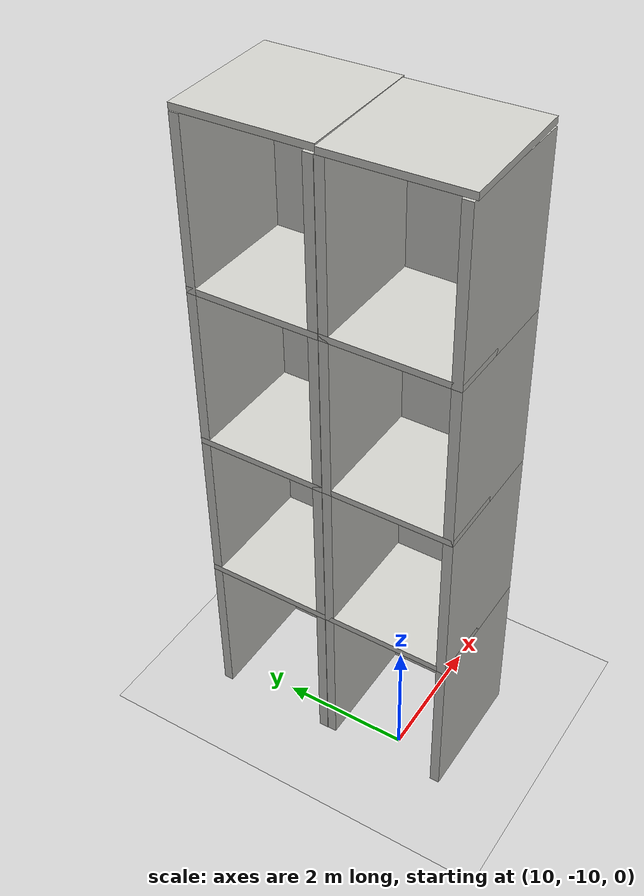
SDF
<sdf version="1.7">
 <world name="default">
  <model name="ground_plane">
   <static>1</static>
   <link name="link">
    <collision name="collision">
     <geometry><plane><normal>0 0 1</normal><size>100 100</size></plane></geometry>
     <surface>
      <contact><collide_bitmask>65535</collide_bitmask></contact>
      <friction><ode><mu>100</mu><mu2>50</mu2></ode></friction>
     </surface>
    </collision>
    <visual name="visual">
     <cast_shadows>0</cast_shadows>
     <geometry><plane><normal>0 0 1</normal><size>100 100</size></plane></geometry>
     <material>
      <script><uri>file://media/materials/scripts/gazebo.material</uri><name>Gazebo/Grey</name></script>
     </material>
    </visual>
   </link>
  </model>
  <model name="twin_4th_building_clone">
   <link name="Floor_1">
    <pose>-1.9225 -0.6325 2.5 0 -0 0</pose>
    <visual name="Floor_1_Visual">
     <pose>0 0 0.05 0 -0 0</pose>
     <geometry><box><size>2 2 0.1</size></box></geometry>
     <material>
      <script><uri>file://media/materials/scripts/gazebo.material</uri><name>Gazebo/CeilingTiled</name></script>
      <ambient>1 1 1 1</ambient>
      <shader type="pixel"/>
      <emissive>0 0 0 1</emissive>
     </material>
     <meta><layer>1</layer></meta>
    </visual>
    <collision name="Floor_1_Collision">
     <pose>0 0 0.05 0 -0 0</pose>
     <geometry><box><size>2 2 0.1</size></box></geometry>
     <surface>
      <friction>
       <ode><mu>1</mu><mu2>1</mu2><fdir1>0 0 0</fdir1><slip1>0</slip1><slip2>0</slip2></ode>
       <torsional>
        <coefficient>1</coefficient>
        <patch_radius>0</patch_radius>
        <surface_radius>0</surface_radius>
        <use_patch_radius>1</use_patch_radius>
        <ode><slip>0</slip></ode>
       </torsional>
      </friction>
      <bounce><restitution_coefficient>0</restitution_coefficient><threshold>1e+06</threshold></bounce>
      <contact>
       <collide_without_contact>0</collide_without_contact>
       <collide_without_contact_bitmask>1</collide_without_contact_bitmask>
       <collide_bitmask>1</collide_bitmask>
       <ode>
        <soft_cfm>0</soft_cfm>
        <soft_erp>0.2</soft_erp>
        <kp>1e+13</kp>
        <kd>1</kd>
        <max_vel>0.01</max_vel>
        <min_depth>0</min_depth>
       </ode>
       <bullet>
        <split_impulse>1</split_impulse>
        <split_impulse_penetration_threshold>-0.01</split_impulse_penetration_threshold>
        <soft_cfm>0</soft_cfm>
        <soft_erp>0.2</soft_erp>
        <kp>1e+13</kp>
        <kd>1</kd>
       </bullet>
      </contact>
     </surface>
    </collision>
   </link>
   <link name="Floor_10">
    <pose>-1.9225 -0.6325 7.5 0 -0 0</pose>
    <visual name="Floor_10_Visual">
     <pose>0 0 0.05 0 -0 0</pose>
     <geometry><box><size>2 2 0.1</size></box></geometry>
     <material>
      <script><uri>file://media/materials/scripts/gazebo.material</uri><name>Gazebo/CeilingTiled</name></script>
      <ambient>1 1 1 1</ambient>
      <shader type="pixel"/>
      <emissive>0 0 0 1</emissive>
     </material>
     <meta><layer>3</layer></meta>
    </visual>
    <collision name="Floor_10_Collision">
     <pose>0 0 0.05 0 -0 0</pose>
     <geometry><box><size>2 2 0.1</size></box></geometry>
     <surface>
      <friction>
       <ode><mu>1</mu><mu2>1</mu2><fdir1>0 0 0</fdir1><slip1>0</slip1><slip2>0</slip2></ode>
       <torsional>
        <coefficient>1</coefficient>
        <patch_radius>0</patch_radius>
        <surface_radius>0</surface_radius>
        <use_patch_radius>1</use_patch_radius>
        <ode><slip>0</slip></ode>
       </torsional>
      </friction>
      <bounce><restitution_coefficient>0</restitution_coefficient><threshold>1e+06</threshold></bounce>
      <contact>
       <collide_without_contact>0</collide_without_contact>
       <collide_without_contact_bitmask>1</collide_without_contact_bitmask>
       <collide_bitmask>1</collide_bitmask>
       <ode>
        <soft_cfm>0</soft_cfm>
        <soft_erp>0.2</soft_erp>
        <kp>1e+13</kp>
        <kd>1</kd>
        <max_vel>0.01</max_vel>
        <min_depth>0</min_depth>
       </ode>
       <bullet>
        <split_impulse>1</split_impulse>
        <split_impulse_penetration_threshold>-0.01</split_impulse_penetration_threshold>
        <soft_cfm>0</soft_cfm>
        <soft_erp>0.2</soft_erp>
        <kp>1e+13</kp>
        <kd>1</kd>
       </bullet>
      </contact>
     </surface>
    </collision>
   </link>
   <link name="Floor_10_clone">
    <pose>-1.91647 -0.637292 10.0203 0 0 -1.55375</pose>
    <visual name="Floor_10_Visual">
     <pose>0 0 0.05 0 -0 0</pose>
     <geometry><box><size>2 2 0.1</size></box></geometry>
     <material>
      <script><uri>file://media/materials/scripts/gazebo.material</uri><name>Gazebo/CeilingTiled</name></script>
      <ambient>1 1 1 1</ambient>
      <shader type="pixel"/>
      <emissive>0 0 0 1</emissive>
     </material>
     <meta><layer>3</layer></meta>
    </visual>
    <collision name="Floor_10_Collision">
     <pose>0 0 0.05 0 -0 0</pose>
     <geometry><box><size>2 2 0.1</size></box></geometry>
     <surface>
      <friction>
       <ode><mu>1</mu><mu2>1</mu2><fdir1>0 0 0</fdir1><slip1>0</slip1><slip2>0</slip2></ode>
       <torsional>
        <coefficient>1</coefficient>
        <patch_radius>0</patch_radius>
        <surface_radius>0</surface_radius>
        <use_patch_radius>1</use_patch_radius>
        <ode><slip>0</slip></ode>
       </torsional>
      </friction>
      <bounce><restitution_coefficient>0</restitution_coefficient><threshold>1e+06</threshold></bounce>
      <contact>
       <collide_without_contact>0</collide_without_contact>
       <collide_without_contact_bitmask>1</collide_without_contact_bitmask>
       <collide_bitmask>1</collide_bitmask>
       <ode>
        <soft_cfm>0</soft_cfm>
        <soft_erp>0.2</soft_erp>
        <kp>1e+13</kp>
        <kd>1</kd>
        <max_vel>0.01</max_vel>
        <min_depth>0</min_depth>
       </ode>
       <bullet>
        <split_impulse>1</split_impulse>
        <split_impulse_penetration_threshold>-0.01</split_impulse_penetration_threshold>
        <soft_cfm>0</soft_cfm>
        <soft_erp>0.2</soft_erp>
        <kp>1e+13</kp>
        <kd>1</kd>
       </bullet>
      </contact>
     </surface>
    </collision>
   </link>
   <link name="Floor_10_clone_clone">
    <pose>-3.93376 -0.629613 10.0203 0 0 -3.11619</pose>
    <visual name="Floor_10_Visual">
     <pose>0 0 0.05 0 -0 0</pose>
     <geometry><box><size>2 2 0.1</size></box></geometry>
     <material>
      <script><uri>file://media/materials/scripts/gazebo.material</uri><name>Gazebo/CeilingTiled</name></script>
      <ambient>1 1 1 1</ambient>
      <shader type="pixel"/>
      <emissive>0 0 0 1</emissive>
     </material>
     <meta><layer>3</layer></meta>
    </visual>
    <collision name="Floor_10_Collision">
     <pose>0 0 0.05 0 -0 0</pose>
     <geometry><box><size>2 2 0.1</size></box></geometry>
     <surface>
      <friction>
       <ode><mu>1</mu><mu2>1</mu2><fdir1>0 0 0</fdir1><slip1>0</slip1><slip2>0</slip2></ode>
       <torsional>
        <coefficient>1</coefficient>
        <patch_radius>0</patch_radius>
        <surface_radius>0</surface_radius>
        <use_patch_radius>1</use_patch_radius>
        <ode><slip>0</slip></ode>
       </torsional>
      </friction>
      <bounce><restitution_coefficient>0</restitution_coefficient><threshold>1e+06</threshold></bounce>
      <contact>
       <collide_without_contact>0</collide_without_contact>
       <collide_without_contact_bitmask>1</collide_without_contact_bitmask>
       <collide_bitmask>1</collide_bitmask>
       <ode>
        <soft_cfm>0</soft_cfm>
        <soft_erp>0.2</soft_erp>
        <kp>1e+13</kp>
        <kd>1</kd>
        <max_vel>0.01</max_vel>
        <min_depth>0</min_depth>
       </ode>
       <bullet>
        <split_impulse>1</split_impulse>
        <split_impulse_penetration_threshold>-0.01</split_impulse_penetration_threshold>
        <soft_cfm>0</soft_cfm>
        <soft_erp>0.2</soft_erp>
        <kp>1e+13</kp>
        <kd>1</kd>
       </bullet>
      </contact>
     </surface>
    </collision>
   </link>
   <link name="Floor_9">
    <pose>-1.9225 -0.6325 5 0 -0 0</pose>
    <visual name="Floor_9_Visual">
     <pose>0 0 0.05 0 -0 0</pose>
     <geometry><box><size>2 2 0.1</size></box></geometry>
     <material>
      <script><uri>file://media/materials/scripts/gazebo.material</uri><name>Gazebo/CeilingTiled</name></script>
      <ambient>1 1 1 1</ambient>
      <shader type="pixel"/>
      <emissive>0 0 0 1</emissive>
     </material>
     <meta><layer>2</layer></meta>
    </visual>
    <collision name="Floor_9_Collision">
     <pose>0 0 0.05 0 -0 0</pose>
     <geometry><box><size>2 2 0.1</size></box></geometry>
     <surface>
      <friction>
       <ode><mu>1</mu><mu2>1</mu2><fdir1>0 0 0</fdir1><slip1>0</slip1><slip2>0</slip2></ode>
       <torsional>
        <coefficient>1</coefficient>
        <patch_radius>0</patch_radius>
        <surface_radius>0</surface_radius>
        <use_patch_radius>1</use_patch_radius>
        <ode><slip>0</slip></ode>
       </torsional>
      </friction>
      <bounce><restitution_coefficient>0</restitution_coefficient><threshold>1e+06</threshold></bounce>
      <contact>
       <collide_without_contact>0</collide_without_contact>
       <collide_without_contact_bitmask>1</collide_without_contact_bitmask>
       <collide_bitmask>1</collide_bitmask>
       <ode>
        <soft_cfm>0</soft_cfm>
        <soft_erp>0.2</soft_erp>
        <kp>1e+13</kp>
        <kd>1</kd>
        <max_vel>0.01</max_vel>
        <min_depth>0</min_depth>
       </ode>
       <bullet>
        <split_impulse>1</split_impulse>
        <split_impulse_penetration_threshold>-0.01</split_impulse_penetration_threshold>
        <soft_cfm>0</soft_cfm>
        <soft_erp>0.2</soft_erp>
        <kp>1e+13</kp>
        <kd>1</kd>
       </bullet>
      </contact>
     </surface>
    </collision>
   </link>
   <link name="Wall_13">
    <pose>-2.8475 -0.6325 0 0 0 -1.5708</pose>
    <visual name="Wall_13_Visual">
     <pose>0 0 1.25 0 -0 0</pose>
     <geometry><box><size>2 0.15 2.5</size></box></geometry>
     <material>
      <script><uri>file://media/materials/scripts/gazebo.material</uri><name>Gazebo/CeilingTiled</name></script>
      <ambient>1 1 1 1</ambient>
      <shader type="pixel"/>
      <emissive>0 0 0 1</emissive>
     </material>
     <meta><layer>0</layer></meta>
    </visual>
    <collision name="Wall_13_Collision">
     <pose>0 0 1.25 0 -0 0</pose>
     <geometry><box><size>2 0.15 2.5</size></box></geometry>
     <surface>
      <friction>
       <ode><mu>1</mu><mu2>1</mu2><fdir1>0 0 0</fdir1><slip1>0</slip1><slip2>0</slip2></ode>
       <torsional>
        <coefficient>1</coefficient>
        <patch_radius>0</patch_radius>
        <surface_radius>0</surface_radius>
        <use_patch_radius>1</use_patch_radius>
        <ode><slip>0</slip></ode>
       </torsional>
      </friction>
      <bounce><restitution_coefficient>0</restitution_coefficient><threshold>1e+06</threshold></bounce>
      <contact>
       <collide_without_contact>0</collide_without_contact>
       <collide_without_contact_bitmask>1</collide_without_contact_bitmask>
       <collide_bitmask>1</collide_bitmask>
       <ode>
        <soft_cfm>0</soft_cfm>
        <soft_erp>0.2</soft_erp>
        <kp>1e+13</kp>
        <kd>1</kd>
        <max_vel>0.01</max_vel>
        <min_depth>0</min_depth>
       </ode>
       <bullet>
        <split_impulse>1</split_impulse>
        <split_impulse_penetration_threshold>-0.01</split_impulse_penetration_threshold>
        <soft_cfm>0</soft_cfm>
        <soft_erp>0.2</soft_erp>
        <kp>1e+13</kp>
        <kd>1</kd>
       </bullet>
      </contact>
     </surface>
    </collision>
   </link>
   <link name="Wall_14">
    <pose>-1.9225 -1.5575 0 0 -0 0</pose>
    <visual name="Wall_14_Visual">
     <pose>0 0 1.25 0 -0 0</pose>
     <geometry><box><size>2 0.15 2.5</size></box></geometry>
     <material>
      <script><uri>file://media/materials/scripts/gazebo.material</uri><name>Gazebo/CeilingTiled</name></script>
      <ambient>1 1 1 1</ambient>
      <shader type="pixel"/>
     </material>
     <meta><layer>0</layer></meta>
    </visual>
    <collision name="Wall_14_Collision">
     <pose>0 0 1.25 0 -0 0</pose>
     <geometry><box><size>2 0.15 2.5</size></box></geometry>
     <surface>
      <friction>
       <ode><mu>1</mu><mu2>1</mu2><fdir1>0 0 0</fdir1><slip1>0</slip1><slip2>0</slip2></ode>
       <torsional>
        <coefficient>1</coefficient>
        <patch_radius>0</patch_radius>
        <surface_radius>0</surface_radius>
        <use_patch_radius>1</use_patch_radius>
        <ode><slip>0</slip></ode>
       </torsional>
      </friction>
      <bounce><restitution_coefficient>0</restitution_coefficient><threshold>1e+06</threshold></bounce>
      <contact>
       <collide_without_contact>0</collide_without_contact>
       <collide_without_contact_bitmask>1</collide_without_contact_bitmask>
       <collide_bitmask>1</collide_bitmask>
       <ode>
        <soft_cfm>0</soft_cfm>
        <soft_erp>0.2</soft_erp>
        <kp>1e+13</kp>
        <kd>1</kd>
        <max_vel>0.01</max_vel>
        <min_depth>0</min_depth>
       </ode>
       <bullet>
        <split_impulse>1</split_impulse>
        <split_impulse_penetration_threshold>-0.01</split_impulse_penetration_threshold>
        <soft_cfm>0</soft_cfm>
        <soft_erp>0.2</soft_erp>
        <kp>1e+13</kp>
        <kd>1</kd>
       </bullet>
      </contact>
     </surface>
    </collision>
   </link>
   <link name="Wall_15">
    <pose>-0.9975 -0.6325 0 0 -0 1.5708</pose>
    <visual name="Wall_15_Visual">
     <pose>0 0 1.25 0 -0 0</pose>
     <geometry><box><size>2 0.15 2.5</size></box></geometry>
     <material>
      <script><uri>file://media/materials/scripts/gazebo.material</uri><name>Gazebo/CeilingTiled</name></script>
      <ambient>1 1 1 1</ambient>
      <shader type="pixel"/>
     </material>
     <meta><layer>0</layer></meta>
    </visual>
    <collision name="Wall_15_Collision">
     <pose>0 0 1.25 0 -0 0</pose>
     <geometry><box><size>2 0.15 2.5</size></box></geometry>
     <surface>
      <friction>
       <ode><mu>1</mu><mu2>1</mu2><fdir1>0 0 0</fdir1><slip1>0</slip1><slip2>0</slip2></ode>
       <torsional>
        <coefficient>1</coefficient>
        <patch_radius>0</patch_radius>
        <surface_radius>0</surface_radius>
        <use_patch_radius>1</use_patch_radius>
        <ode><slip>0</slip></ode>
       </torsional>
      </friction>
      <bounce><restitution_coefficient>0</restitution_coefficient><threshold>1e+06</threshold></bounce>
      <contact>
       <collide_without_contact>0</collide_without_contact>
       <collide_without_contact_bitmask>1</collide_without_contact_bitmask>
       <collide_bitmask>1</collide_bitmask>
       <ode>
        <soft_cfm>0</soft_cfm>
        <soft_erp>0.2</soft_erp>
        <kp>1e+13</kp>
        <kd>1</kd>
        <max_vel>0.01</max_vel>
        <min_depth>0</min_depth>
       </ode>
       <bullet>
        <split_impulse>1</split_impulse>
        <split_impulse_penetration_threshold>-0.01</split_impulse_penetration_threshold>
        <soft_cfm>0</soft_cfm>
        <soft_erp>0.2</soft_erp>
        <kp>1e+13</kp>
        <kd>1</kd>
       </bullet>
      </contact>
     </surface>
    </collision>
   </link>
   <link name="Wall_17">
    <pose>-2.8475 -0.6325 2.5 0 0 -1.5708</pose>
    <visual name="Wall_17_Visual">
     <pose>0 0 1.25 0 -0 0</pose>
     <geometry><box><size>2 0.15 2.5</size></box></geometry>
     <material>
      <script><uri>file://media/materials/scripts/gazebo.material</uri><name>Gazebo/CeilingTiled</name></script>
      <ambient>1 1 1 1</ambient>
      <shader type="pixel"/>
      <emissive>0 0 0 1</emissive>
     </material>
     <meta><layer>1</layer></meta>
    </visual>
    <collision name="Wall_17_Collision">
     <pose>0 0 1.25 0 -0 0</pose>
     <geometry><box><size>2 0.15 2.5</size></box></geometry>
     <surface>
      <friction>
       <ode><mu>1</mu><mu2>1</mu2><fdir1>0 0 0</fdir1><slip1>0</slip1><slip2>0</slip2></ode>
       <torsional>
        <coefficient>1</coefficient>
        <patch_radius>0</patch_radius>
        <surface_radius>0</surface_radius>
        <use_patch_radius>1</use_patch_radius>
        <ode><slip>0</slip></ode>
       </torsional>
      </friction>
      <bounce><restitution_coefficient>0</restitution_coefficient><threshold>1e+06</threshold></bounce>
      <contact>
       <collide_without_contact>0</collide_without_contact>
       <collide_without_contact_bitmask>1</collide_without_contact_bitmask>
       <collide_bitmask>1</collide_bitmask>
       <ode>
        <soft_cfm>0</soft_cfm>
        <soft_erp>0.2</soft_erp>
        <kp>1e+13</kp>
        <kd>1</kd>
        <max_vel>0.01</max_vel>
        <min_depth>0</min_depth>
       </ode>
       <bullet>
        <split_impulse>1</split_impulse>
        <split_impulse_penetration_threshold>-0.01</split_impulse_penetration_threshold>
        <soft_cfm>0</soft_cfm>
        <soft_erp>0.2</soft_erp>
        <kp>1e+13</kp>
        <kd>1</kd>
       </bullet>
      </contact>
     </surface>
    </collision>
   </link>
   <link name="Wall_18">
    <pose>-1.9225 -1.5575 2.5 0 -0 0</pose>
    <visual name="Wall_18_Visual">
     <pose>0 0 1.25 0 -0 0</pose>
     <geometry><box><size>2 0.15 2.5</size></box></geometry>
     <material>
      <script><uri>file://media/materials/scripts/gazebo.material</uri><name>Gazebo/CeilingTiled</name></script>
      <ambient>1 1 1 1</ambient>
      <shader type="pixel"/>
      <emissive>0 0 0 1</emissive>
     </material>
     <meta><layer>1</layer></meta>
    </visual>
    <collision name="Wall_18_Collision">
     <pose>0 0 1.25 0 -0 0</pose>
     <geometry><box><size>2 0.15 2.5</size></box></geometry>
     <surface>
      <friction>
       <ode><mu>1</mu><mu2>1</mu2><fdir1>0 0 0</fdir1><slip1>0</slip1><slip2>0</slip2></ode>
       <torsional>
        <coefficient>1</coefficient>
        <patch_radius>0</patch_radius>
        <surface_radius>0</surface_radius>
        <use_patch_radius>1</use_patch_radius>
        <ode><slip>0</slip></ode>
       </torsional>
      </friction>
      <bounce><restitution_coefficient>0</restitution_coefficient><threshold>1e+06</threshold></bounce>
      <contact>
       <collide_without_contact>0</collide_without_contact>
       <collide_without_contact_bitmask>1</collide_without_contact_bitmask>
       <collide_bitmask>1</collide_bitmask>
       <ode>
        <soft_cfm>0</soft_cfm>
        <soft_erp>0.2</soft_erp>
        <kp>1e+13</kp>
        <kd>1</kd>
        <max_vel>0.01</max_vel>
        <min_depth>0</min_depth>
       </ode>
       <bullet>
        <split_impulse>1</split_impulse>
        <split_impulse_penetration_threshold>-0.01</split_impulse_penetration_threshold>
        <soft_cfm>0</soft_cfm>
        <soft_erp>0.2</soft_erp>
        <kp>1e+13</kp>
        <kd>1</kd>
       </bullet>
      </contact>
     </surface>
    </collision>
   </link>
   <link name="Wall_19">
    <pose>-0.9975 -0.6325 2.5 0 -0 1.5708</pose>
    <visual name="Wall_19_Visual">
     <pose>0 0 1.25 0 -0 0</pose>
     <geometry><box><size>2 0.15 2.5</size></box></geometry>
     <material>
      <script><uri>file://media/materials/scripts/gazebo.material</uri><name>Gazebo/CeilingTiled</name></script>
      <ambient>1 1 1 1</ambient>
      <shader type="pixel"/>
     </material>
     <meta><layer>1</layer></meta>
    </visual>
    <collision name="Wall_19_Collision">
     <pose>0 0 1.25 0 -0 0</pose>
     <geometry><box><size>2 0.15 2.5</size></box></geometry>
     <surface>
      <friction>
       <ode><mu>1</mu><mu2>1</mu2><fdir1>0 0 0</fdir1><slip1>0</slip1><slip2>0</slip2></ode>
       <torsional>
        <coefficient>1</coefficient>
        <patch_radius>0</patch_radius>
        <surface_radius>0</surface_radius>
        <use_patch_radius>1</use_patch_radius>
        <ode><slip>0</slip></ode>
       </torsional>
      </friction>
      <bounce><restitution_coefficient>0</restitution_coefficient><threshold>1e+06</threshold></bounce>
      <contact>
       <collide_without_contact>0</collide_without_contact>
       <collide_without_contact_bitmask>1</collide_without_contact_bitmask>
       <collide_bitmask>1</collide_bitmask>
       <ode>
        <soft_cfm>0</soft_cfm>
        <soft_erp>0.2</soft_erp>
        <kp>1e+13</kp>
        <kd>1</kd>
        <max_vel>0.01</max_vel>
        <min_depth>0</min_depth>
       </ode>
       <bullet>
        <split_impulse>1</split_impulse>
        <split_impulse_penetration_threshold>-0.01</split_impulse_penetration_threshold>
        <soft_cfm>0</soft_cfm>
        <soft_erp>0.2</soft_erp>
        <kp>1e+13</kp>
        <kd>1</kd>
       </bullet>
      </contact>
     </surface>
    </collision>
   </link>
   <link name="Wall_40">
    <pose>-2.8475 -0.6325 5 0 0 -1.5708</pose>
    <visual name="Wall_40_Visual">
     <pose>0 0 1.25 0 -0 0</pose>
     <geometry><box><size>2 0.15 2.5</size></box></geometry>
     <material>
      <script><uri>file://media/materials/scripts/gazebo.material</uri><name>Gazebo/CeilingTiled</name></script>
      <ambient>1 1 1 1</ambient>
      <shader type="pixel"/>
      <emissive>0 0 0 1</emissive>
     </material>
     <meta><layer>2</layer></meta>
    </visual>
    <collision name="Wall_40_Collision">
     <pose>0 0 1.25 0 -0 0</pose>
     <geometry><box><size>2 0.15 2.5</size></box></geometry>
     <surface>
      <friction>
       <ode><mu>1</mu><mu2>1</mu2><fdir1>0 0 0</fdir1><slip1>0</slip1><slip2>0</slip2></ode>
       <torsional>
        <coefficient>1</coefficient>
        <patch_radius>0</patch_radius>
        <surface_radius>0</surface_radius>
        <use_patch_radius>1</use_patch_radius>
        <ode><slip>0</slip></ode>
       </torsional>
      </friction>
      <bounce><restitution_coefficient>0</restitution_coefficient><threshold>1e+06</threshold></bounce>
      <contact>
       <collide_without_contact>0</collide_without_contact>
       <collide_without_contact_bitmask>1</collide_without_contact_bitmask>
       <collide_bitmask>1</collide_bitmask>
       <ode>
        <soft_cfm>0</soft_cfm>
        <soft_erp>0.2</soft_erp>
        <kp>1e+13</kp>
        <kd>1</kd>
        <max_vel>0.01</max_vel>
        <min_depth>0</min_depth>
       </ode>
       <bullet>
        <split_impulse>1</split_impulse>
        <split_impulse_penetration_threshold>-0.01</split_impulse_penetration_threshold>
        <soft_cfm>0</soft_cfm>
        <soft_erp>0.2</soft_erp>
        <kp>1e+13</kp>
        <kd>1</kd>
       </bullet>
      </contact>
     </surface>
    </collision>
   </link>
   <link name="Wall_41">
    <pose>-1.9225 -1.5575 5 0 -0 0</pose>
    <visual name="Wall_41_Visual">
     <pose>0 0 1.25 0 -0 0</pose>
     <geometry><box><size>2 0.15 2.5</size></box></geometry>
     <material>
      <script><uri>file://media/materials/scripts/gazebo.material</uri><name>Gazebo/CeilingTiled</name></script>
      <ambient>1 1 1 1</ambient>
      <shader type="pixel"/>
      <emissive>0 0 0 1</emissive>
     </material>
     <meta><layer>2</layer></meta>
    </visual>
    <collision name="Wall_41_Collision">
     <pose>0 0 1.25 0 -0 0</pose>
     <geometry><box><size>2 0.15 2.5</size></box></geometry>
     <surface>
      <friction>
       <ode><mu>1</mu><mu2>1</mu2><fdir1>0 0 0</fdir1><slip1>0</slip1><slip2>0</slip2></ode>
       <torsional>
        <coefficient>1</coefficient>
        <patch_radius>0</patch_radius>
        <surface_radius>0</surface_radius>
        <use_patch_radius>1</use_patch_radius>
        <ode><slip>0</slip></ode>
       </torsional>
      </friction>
      <bounce><restitution_coefficient>0</restitution_coefficient><threshold>1e+06</threshold></bounce>
      <contact>
       <collide_without_contact>0</collide_without_contact>
       <collide_without_contact_bitmask>1</collide_without_contact_bitmask>
       <collide_bitmask>1</collide_bitmask>
       <ode>
        <soft_cfm>0</soft_cfm>
        <soft_erp>0.2</soft_erp>
        <kp>1e+13</kp>
        <kd>1</kd>
        <max_vel>0.01</max_vel>
        <min_depth>0</min_depth>
       </ode>
       <bullet>
        <split_impulse>1</split_impulse>
        <split_impulse_penetration_threshold>-0.01</split_impulse_penetration_threshold>
        <soft_cfm>0</soft_cfm>
        <soft_erp>0.2</soft_erp>
        <kp>1e+13</kp>
        <kd>1</kd>
       </bullet>
      </contact>
     </surface>
    </collision>
   </link>
   <link name="Wall_42">
    <pose>-0.9975 -0.6325 5 0 -0 1.5708</pose>
    <visual name="Wall_42_Visual">
     <pose>0 0 1.25 0 -0 0</pose>
     <geometry><box><size>2 0.15 2.5</size></box></geometry>
     <material>
      <script><uri>file://media/materials/scripts/gazebo.material</uri><name>Gazebo/CeilingTiled</name></script>
      <ambient>1 1 1 1</ambient>
      <shader type="pixel"/>
     </material>
     <meta><layer>2</layer></meta>
    </visual>
    <collision name="Wall_42_Collision">
     <pose>0 0 1.25 0 -0 0</pose>
     <geometry><box><size>2 0.15 2.5</size></box></geometry>
     <surface>
      <friction>
       <ode><mu>1</mu><mu2>1</mu2><fdir1>0 0 0</fdir1><slip1>0</slip1><slip2>0</slip2></ode>
       <torsional>
        <coefficient>1</coefficient>
        <patch_radius>0</patch_radius>
        <surface_radius>0</surface_radius>
        <use_patch_radius>1</use_patch_radius>
        <ode><slip>0</slip></ode>
       </torsional>
      </friction>
      <bounce><restitution_coefficient>0</restitution_coefficient><threshold>1e+06</threshold></bounce>
      <contact>
       <collide_without_contact>0</collide_without_contact>
       <collide_without_contact_bitmask>1</collide_without_contact_bitmask>
       <collide_bitmask>1</collide_bitmask>
       <ode>
        <soft_cfm>0</soft_cfm>
        <soft_erp>0.2</soft_erp>
        <kp>1e+13</kp>
        <kd>1</kd>
        <max_vel>0.01</max_vel>
        <min_depth>0</min_depth>
       </ode>
       <bullet>
        <split_impulse>1</split_impulse>
        <split_impulse_penetration_threshold>-0.01</split_impulse_penetration_threshold>
        <soft_cfm>0</soft_cfm>
        <soft_erp>0.2</soft_erp>
        <kp>1e+13</kp>
        <kd>1</kd>
       </bullet>
      </contact>
     </surface>
    </collision>
   </link>
   <link name="Wall_43">
    <pose>-2.8475 -0.6325 7.5 0 0 -1.5708</pose>
    <visual name="Wall_43_Visual">
     <pose>0 0 1.25 0 -0 0</pose>
     <geometry><box><size>2 0.15 2.5</size></box></geometry>
     <material>
      <script><uri>file://media/materials/scripts/gazebo.material</uri><name>Gazebo/CeilingTiled</name></script>
      <ambient>1 1 1 1</ambient>
      <shader type="pixel"/>
      <emissive>0 0 0 1</emissive>
     </material>
     <meta><layer>3</layer></meta>
    </visual>
    <collision name="Wall_43_Collision">
     <pose>0 0 1.25 0 -0 0</pose>
     <geometry><box><size>2 0.15 2.5</size></box></geometry>
     <surface>
      <friction>
       <ode><mu>1</mu><mu2>1</mu2><fdir1>0 0 0</fdir1><slip1>0</slip1><slip2>0</slip2></ode>
       <torsional>
        <coefficient>1</coefficient>
        <patch_radius>0</patch_radius>
        <surface_radius>0</surface_radius>
        <use_patch_radius>1</use_patch_radius>
        <ode><slip>0</slip></ode>
       </torsional>
      </friction>
      <bounce><restitution_coefficient>0</restitution_coefficient><threshold>1e+06</threshold></bounce>
      <contact>
       <collide_without_contact>0</collide_without_contact>
       <collide_without_contact_bitmask>1</collide_without_contact_bitmask>
       <collide_bitmask>1</collide_bitmask>
       <ode>
        <soft_cfm>0</soft_cfm>
        <soft_erp>0.2</soft_erp>
        <kp>1e+13</kp>
        <kd>1</kd>
        <max_vel>0.01</max_vel>
        <min_depth>0</min_depth>
       </ode>
       <bullet>
        <split_impulse>1</split_impulse>
        <split_impulse_penetration_threshold>-0.01</split_impulse_penetration_threshold>
        <soft_cfm>0</soft_cfm>
        <soft_erp>0.2</soft_erp>
        <kp>1e+13</kp>
        <kd>1</kd>
       </bullet>
      </contact>
     </surface>
    </collision>
   </link>
   <link name="Wall_44">
    <pose>-1.9225 -1.5575 7.5 0 -0 0</pose>
    <visual name="Wall_44_Visual">
     <pose>0 0 1.25 0 -0 0</pose>
     <geometry><box><size>2 0.15 2.5</size></box></geometry>
     <material>
      <script><uri>file://media/materials/scripts/gazebo.material</uri><name>Gazebo/CeilingTiled</name></script>
      <ambient>1 1 1 1</ambient>
      <shader type="pixel"/>
      <emissive>0 0 0 1</emissive>
     </material>
     <meta><layer>3</layer></meta>
    </visual>
    <collision name="Wall_44_Collision">
     <pose>0 0 1.25 0 -0 0</pose>
     <geometry><box><size>2 0.15 2.5</size></box></geometry>
     <surface>
      <friction>
       <ode><mu>1</mu><mu2>1</mu2><fdir1>0 0 0</fdir1><slip1>0</slip1><slip2>0</slip2></ode>
       <torsional>
        <coefficient>1</coefficient>
        <patch_radius>0</patch_radius>
        <surface_radius>0</surface_radius>
        <use_patch_radius>1</use_patch_radius>
        <ode><slip>0</slip></ode>
       </torsional>
      </friction>
      <bounce><restitution_coefficient>0</restitution_coefficient><threshold>1e+06</threshold></bounce>
      <contact>
       <collide_without_contact>0</collide_without_contact>
       <collide_without_contact_bitmask>1</collide_without_contact_bitmask>
       <collide_bitmask>1</collide_bitmask>
       <ode>
        <soft_cfm>0</soft_cfm>
        <soft_erp>0.2</soft_erp>
        <kp>1e+13</kp>
        <kd>1</kd>
        <max_vel>0.01</max_vel>
        <min_depth>0</min_depth>
       </ode>
       <bullet>
        <split_impulse>1</split_impulse>
        <split_impulse_penetration_threshold>-0.01</split_impulse_penetration_threshold>
        <soft_cfm>0</soft_cfm>
        <soft_erp>0.2</soft_erp>
        <kp>1e+13</kp>
        <kd>1</kd>
       </bullet>
      </contact>
     </surface>
    </collision>
   </link>
   <link name="Wall_45">
    <pose>-0.9975 -0.6325 7.5 0 -0 1.5708</pose>
    <visual name="Wall_45_Visual">
     <pose>0 0 1.25 0 -0 0</pose>
     <geometry><box><size>2 0.15 2.5</size></box></geometry>
     <material>
      <script><uri>file://media/materials/scripts/gazebo.material</uri><name>Gazebo/CeilingTiled</name></script>
      <ambient>1 1 1 1</ambient>
      <shader type="pixel"/>
     </material>
     <meta><layer>3</layer></meta>
    </visual>
    <collision name="Wall_45_Collision">
     <pose>0 0 1.25 0 -0 0</pose>
     <geometry><box><size>2 0.15 2.5</size></box></geometry>
     <surface>
      <friction>
       <ode><mu>1</mu><mu2>1</mu2><fdir1>0 0 0</fdir1><slip1>0</slip1><slip2>0</slip2></ode>
       <torsional>
        <coefficient>1</coefficient>
        <patch_radius>0</patch_radius>
        <surface_radius>0</surface_radius>
        <use_patch_radius>1</use_patch_radius>
        <ode><slip>0</slip></ode>
       </torsional>
      </friction>
      <bounce><restitution_coefficient>0</restitution_coefficient><threshold>1e+06</threshold></bounce>
      <contact>
       <collide_without_contact>0</collide_without_contact>
       <collide_without_contact_bitmask>1</collide_without_contact_bitmask>
       <collide_bitmask>1</collide_bitmask>
       <ode>
        <soft_cfm>0</soft_cfm>
        <soft_erp>0.2</soft_erp>
        <kp>1e+13</kp>
        <kd>1</kd>
        <max_vel>0.01</max_vel>
        <min_depth>0</min_depth>
       </ode>
       <bullet>
        <split_impulse>1</split_impulse>
        <split_impulse_penetration_threshold>-0.01</split_impulse_penetration_threshold>
        <soft_cfm>0</soft_cfm>
        <soft_erp>0.2</soft_erp>
        <kp>1e+13</kp>
        <kd>1</kd>
       </bullet>
      </contact>
     </surface>
    </collision>
   </link>
   <model name="4th_building">
    <pose>-1.99386 -0.00682 0 0 -0 0</pose>
    <link name="Floor_1">
     <collision name="Floor_1_Collision">
      <geometry><box><size>2 2 0.1</size></box></geometry>
      <pose>0 0 0.05 0 -0 0</pose>
     </collision>
     <visual name="Floor_1_Visual">
      <pose>0 0 0.05 0 -0 0</pose>
      <geometry><box><size>2 2 0.1</size></box></geometry>
      <material>
       <script><uri>file://media/materials/scripts/gazebo.material</uri><name>Gazebo/CeilingTiled</name></script>
       <ambient>1 1 1 1</ambient>
      </material>
      <meta><layer>1</layer></meta>
     </visual>
     <pose>-1.9225 -0.6325 2.5 0 -0 0</pose>
    </link>
    <link name="Floor_10">
     <collision name="Floor_10_Collision">
      <geometry><box><size>2 2 0.1</size></box></geometry>
      <pose>0 0 0.05 0 -0 0</pose>
     </collision>
     <visual name="Floor_10_Visual">
      <pose>0 0 0.05 0 -0 0</pose>
      <geometry><box><size>2 2 0.1</size></box></geometry>
      <material>
       <script><uri>file://media/materials/scripts/gazebo.material</uri><name>Gazebo/CeilingTiled</name></script>
       <ambient>1 1 1 1</ambient>
      </material>
      <meta><layer>3</layer></meta>
     </visual>
     <pose>-1.9225 -0.6325 7.5 0 -0 0</pose>
    </link>
    <link name="Floor_9">
     <collision name="Floor_9_Collision">
      <geometry><box><size>2 2 0.1</size></box></geometry>
      <pose>0 0 0.05 0 -0 0</pose>
     </collision>
     <visual name="Floor_9_Visual">
      <pose>0 0 0.05 0 -0 0</pose>
      <geometry><box><size>2 2 0.1</size></box></geometry>
      <material>
       <script><uri>file://media/materials/scripts/gazebo.material</uri><name>Gazebo/CeilingTiled</name></script>
       <ambient>1 1 1 1</ambient>
      </material>
      <meta><layer>2</layer></meta>
     </visual>
     <pose>-1.9225 -0.6325 5 0 -0 0</pose>
    </link>
    <link name="Wall_13">
     <collision name="Wall_13_Collision">
      <geometry><box><size>2 0.15 2.5</size></box></geometry>
      <pose>0 0 1.25 0 -0 0</pose>
     </collision>
     <visual name="Wall_13_Visual">
      <pose>0 0 1.25 0 -0 0</pose>
      <geometry><box><size>2 0.15 2.5</size></box></geometry>
      <material>
       <script><uri>file://media/materials/scripts/gazebo.material</uri><name>Gazebo/CeilingTiled</name></script>
       <ambient>1 1 1 1</ambient>
      </material>
      <meta><layer>0</layer></meta>
     </visual>
     <pose>-2.8475 -0.6325 0 0 -0 -1.5708</pose>
    </link>
    <link name="Wall_14">
     <collision name="Wall_14_Collision">
      <geometry><box><size>2 0.15 2.5</size></box></geometry>
      <pose>0 0 1.25 0 -0 0</pose>
     </collision>
     <visual name="Wall_14_Visual">
      <pose>0 0 1.25 0 -0 0</pose>
      <geometry><box><size>2 0.15 2.5</size></box></geometry>
      <material>
       <script><uri>file://media/materials/scripts/gazebo.material</uri><name>Gazebo/CeilingTiled</name></script>
       <ambient>1 1 1 1</ambient>
      </material>
      <meta><layer>0</layer></meta>
     </visual>
     <pose>-1.9225 -1.5575 0 0 -0 0</pose>
    </link>
    <link name="Wall_15">
     <collision name="Wall_15_Collision">
      <geometry><box><size>2 0.15 2.5</size></box></geometry>
      <pose>0 0 1.25 0 -0 0</pose>
     </collision>
     <visual name="Wall_15_Visual">
      <pose>0 0 1.25 0 -0 0</pose>
      <geometry><box><size>2 0.15 2.5</size></box></geometry>
      <material>
       <script><uri>file://media/materials/scripts/gazebo.material</uri><name>Gazebo/CeilingTiled</name></script>
       <ambient>1 1 1 1</ambient>
      </material>
      <meta><layer>0</layer></meta>
     </visual>
     <pose>-0.9975 -0.6325 0 0 -0 1.5708</pose>
    </link>
    <link name="Wall_17">
     <collision name="Wall_17_Collision">
      <geometry><box><size>2 0.15 2.5</size></box></geometry>
      <pose>0 0 1.25 0 -0 0</pose>
     </collision>
     <visual name="Wall_17_Visual">
      <pose>0 0 1.25 0 -0 0</pose>
      <geometry><box><size>2 0.15 2.5</size></box></geometry>
      <material>
       <script><uri>file://media/materials/scripts/gazebo.material</uri><name>Gazebo/CeilingTiled</name></script>
       <ambient>1 1 1 1</ambient>
      </material>
      <meta><layer>1</layer></meta>
     </visual>
     <pose>-2.8475 -0.6325 2.5 0 -0 -1.5708</pose>
    </link>
    <link name="Wall_18">
     <collision name="Wall_18_Collision">
      <geometry><box><size>2 0.15 2.5</size></box></geometry>
      <pose>0 0 1.25 0 -0 0</pose>
     </collision>
     <visual name="Wall_18_Visual">
      <pose>0 0 1.25 0 -0 0</pose>
      <geometry><box><size>2 0.15 2.5</size></box></geometry>
      <material>
       <script><uri>file://media/materials/scripts/gazebo.material</uri><name>Gazebo/CeilingTiled</name></script>
       <ambient>1 1 1 1</ambient>
      </material>
      <meta><layer>1</layer></meta>
     </visual>
     <pose>-1.9225 -1.5575 2.5 0 -0 0</pose>
    </link>
    <link name="Wall_19">
     <collision name="Wall_19_Collision">
      <geometry><box><size>2 0.15 2.5</size></box></geometry>
      <pose>0 0 1.25 0 -0 0</pose>
     </collision>
     <visual name="Wall_19_Visual">
      <pose>0 0 1.25 0 -0 0</pose>
      <geometry><box><size>2 0.15 2.5</size></box></geometry>
      <material>
       <script><uri>file://media/materials/scripts/gazebo.material</uri><name>Gazebo/CeilingTiled</name></script>
       <ambient>1 1 1 1</ambient>
      </material>
      <meta><layer>1</layer></meta>
     </visual>
     <pose>-0.9975 -0.6325 2.5 0 -0 1.5708</pose>
    </link>
    <link name="Wall_40">
     <collision name="Wall_40_Collision">
      <geometry><box><size>2 0.15 2.5</size></box></geometry>
      <pose>0 0 1.25 0 -0 0</pose>
     </collision>
     <visual name="Wall_40_Visual">
      <pose>0 0 1.25 0 -0 0</pose>
      <geometry><box><size>2 0.15 2.5</size></box></geometry>
      <material>
       <script><uri>file://media/materials/scripts/gazebo.material</uri><name>Gazebo/CeilingTiled</name></script>
       <ambient>1 1 1 1</ambient>
      </material>
      <meta><layer>2</layer></meta>
     </visual>
     <pose>-2.8475 -0.6325 5 0 -0 -1.5708</pose>
    </link>
    <link name="Wall_41">
     <collision name="Wall_41_Collision">
      <geometry><box><size>2 0.15 2.5</size></box></geometry>
      <pose>0 0 1.25 0 -0 0</pose>
     </collision>
     <visual name="Wall_41_Visual">
      <pose>0 0 1.25 0 -0 0</pose>
      <geometry><box><size>2 0.15 2.5</size></box></geometry>
      <material>
       <script><uri>file://media/materials/scripts/gazebo.material</uri><name>Gazebo/CeilingTiled</name></script>
       <ambient>1 1 1 1</ambient>
      </material>
      <meta><layer>2</layer></meta>
     </visual>
     <pose>-1.9225 -1.5575 5 0 -0 0</pose>
    </link>
    <link name="Wall_42">
     <collision name="Wall_42_Collision">
      <geometry><box><size>2 0.15 2.5</size></box></geometry>
      <pose>0 0 1.25 0 -0 0</pose>
     </collision>
     <visual name="Wall_42_Visual">
      <pose>0 0 1.25 0 -0 0</pose>
      <geometry><box><size>2 0.15 2.5</size></box></geometry>
      <material>
       <script><uri>file://media/materials/scripts/gazebo.material</uri><name>Gazebo/CeilingTiled</name></script>
       <ambient>1 1 1 1</ambient>
      </material>
      <meta><layer>2</layer></meta>
     </visual>
     <pose>-0.9975 -0.6325 5 0 -0 1.5708</pose>
    </link>
    <link name="Wall_43">
     <collision name="Wall_43_Collision">
      <geometry><box><size>2 0.15 2.5</size></box></geometry>
      <pose>0 0 1.25 0 -0 0</pose>
     </collision>
     <visual name="Wall_43_Visual">
      <pose>0 0 1.25 0 -0 0</pose>
      <geometry><box><size>2 0.15 2.5</size></box></geometry>
      <material>
       <script><uri>file://media/materials/scripts/gazebo.material</uri><name>Gazebo/CeilingTiled</name></script>
       <ambient>1 1 1 1</ambient>
      </material>
      <meta><layer>3</layer></meta>
     </visual>
     <pose>-2.8475 -0.6325 7.5 0 -0 -1.5708</pose>
    </link>
    <link name="Wall_44">
     <collision name="Wall_44_Collision">
      <geometry><box><size>2 0.15 2.5</size></box></geometry>
      <pose>0 0 1.25 0 -0 0</pose>
     </collision>
     <visual name="Wall_44_Visual">
      <pose>0 0 1.25 0 -0 0</pose>
      <geometry><box><size>2 0.15 2.5</size></box></geometry>
      <material>
       <script><uri>file://media/materials/scripts/gazebo.material</uri><name>Gazebo/CeilingTiled</name></script>
       <ambient>1 1 1 1</ambient>
      </material>
      <meta><layer>3</layer></meta>
     </visual>
     <pose>-1.9225 -1.5575 7.5 0 -0 0</pose>
    </link>
    <link name="Wall_45">
     <collision name="Wall_45_Collision">
      <geometry><box><size>2 0.15 2.5</size></box></geometry>
      <pose>0 0 1.25 0 -0 0</pose>
     </collision>
     <visual name="Wall_45_Visual">
      <pose>0 0 1.25 0 -0 0</pose>
      <geometry><box><size>2 0.15 2.5</size></box></geometry>
      <material>
       <script><uri>file://media/materials/scripts/gazebo.material</uri><name>Gazebo/CeilingTiled</name></script>
       <ambient>1 1 1 1</ambient>
      </material>
      <meta><layer>3</layer></meta>
     </visual>
     <pose>-0.9975 -0.6325 7.5 0 -0 1.5708</pose>
    </link>
    <static>1</static>
   </model>
   <joint name="Wall_13_JOINT_4" type="revolute">
    <parent>Wall_13</parent>
    <child>4th_building::Wall_15</child>
    <axis>
     <xyz>1 0 0</xyz>
     <limit>
      <lower>-1.79769e+308</lower>
      <upper>1.79769e+308</upper>
      <effort>-1</effort>
      <velocity>-1</velocity>
     </limit>
     <dynamics>
      <spring_reference>0</spring_reference>
      <spring_stiffness>0</spring_stiffness>
      <damping>0</damping>
      <friction>0</friction>
     </dynamics>
    </axis>
    <physics>
     <ode><limit><cfm>0</cfm><erp>0.2</erp></limit><suspension><cfm>0</cfm><erp>0.2</erp></suspension></ode>
    </physics>
   </joint>
   <joint name="Wall_17_JOINT_3" type="revolute">
    <parent>Wall_17</parent>
    <child>4th_building::Wall_19</child>
    <axis>
     <xyz>1 0 0</xyz>
     <limit>
      <lower>-1.79769e+308</lower>
      <upper>1.79769e+308</upper>
      <effort>-1</effort>
      <velocity>-1</velocity>
     </limit>
     <dynamics>
      <spring_reference>0</spring_reference>
      <spring_stiffness>0</spring_stiffness>
      <damping>0</damping>
      <friction>0</friction>
     </dynamics>
    </axis>
    <physics>
     <ode><limit><cfm>0</cfm><erp>0.2</erp></limit><suspension><cfm>0</cfm><erp>0.2</erp></suspension></ode>
    </physics>
   </joint>
   <joint name="Wall_40_JOINT_2" type="revolute">
    <parent>Wall_40</parent>
    <child>4th_building::Wall_42</child>
    <axis>
     <xyz>1 0 0</xyz>
     <limit>
      <lower>-1.79769e+308</lower>
      <upper>1.79769e+308</upper>
      <effort>-1</effort>
      <velocity>-1</velocity>
     </limit>
     <dynamics>
      <spring_reference>0</spring_reference>
      <spring_stiffness>0</spring_stiffness>
      <damping>0</damping>
      <friction>0</friction>
     </dynamics>
    </axis>
    <physics>
     <ode><limit><cfm>0</cfm><erp>0.2</erp></limit><suspension><cfm>0</cfm><erp>0.2</erp></suspension></ode>
    </physics>
   </joint>
   <joint name="Wall_43_JOINT_1" type="fixed">
    <parent>Wall_43</parent>
    <child>4th_building::Wall_45</child>
    <physics>
     <ode><limit><cfm>0</cfm><erp>0.2</erp></limit><suspension><cfm>0</cfm><erp>0.2</erp></suspension></ode>
    </physics>
   </joint>
   <static>1</static>
   <pose>10 -6.00001 0 0 -0 1.57</pose>
  </model>
 </world>
</sdf>
